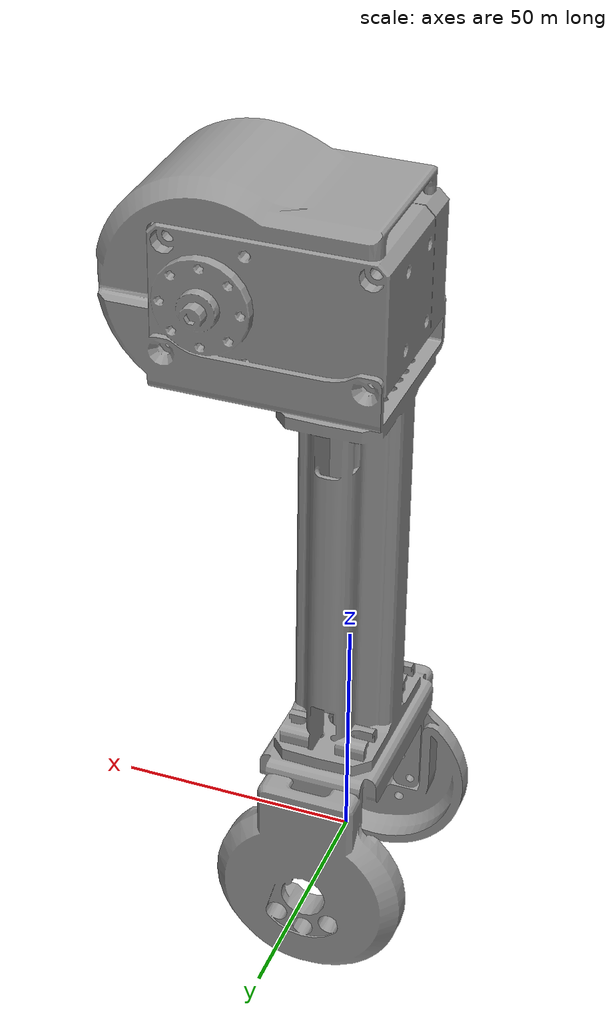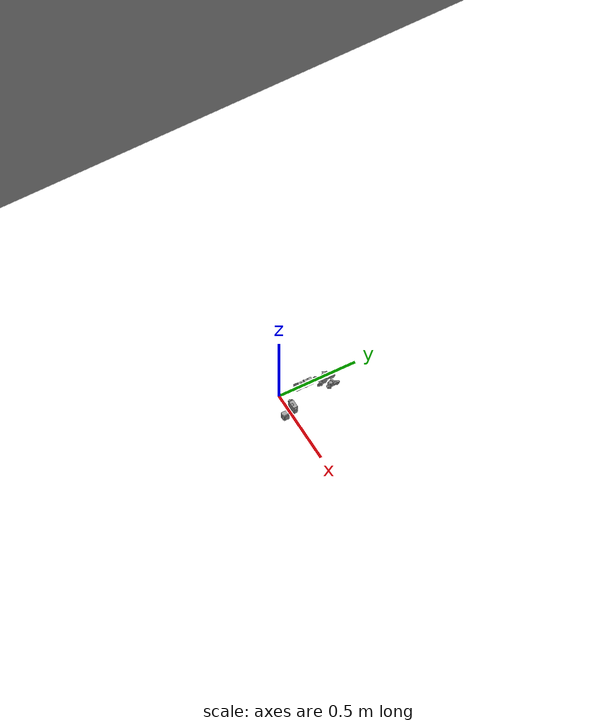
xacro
<?xml version="1.0"?>
<!-- Open_Manipulator Chain -->
<robot name="open_manipulator" xmlns:xacro="http://ros.org/wiki/xacro">

  <!-- Import all Gazebo-customization elements, including Gazebo colors -->
  <xacro:include filename="$(find open_manipulator_description)/urdf/open_manipulator.gazebo.xacro" />
  <!-- Import Rviz colors -->
  <xacro:include filename="$(find open_manipulator_description)/urdf/materials.xacro" />

  <!-- World -->
  <link name="world">
  </link>

  <!-- World fixed joint-->
  <joint name="world_fixed" type="fixed">
    <origin xyz="0.14515 0.005388 0.005" rpy="1.5708 0 0"/>
    <parent link="world"/>
    <child link="link1"/>
  </joint>

  <!-- Link 1 -->
  <link name="link1">
    <visual>
      <origin xyz="0 0 0" rpy="0 0 0"/>
      <geometry>
        <mesh filename="package://open_manipulator_description/meshes/chain_link1.stl" scale="1 1 1"/>
      </geometry>
      <material name="grey"/>
    </visual>

    <collision>
      <origin xyz="0 0 0" rpy="0 0 0"/>
      <geometry>
        <mesh filename="package://open_manipulator_description/meshes/chain_link1.stl" scale="1 1 1"/>
      </geometry>
    </collision>

    <inertial>
      <origin xyz="0 0 0" />
      <mass value="0.082" />
      <inertia ixx="0.1" ixy="0.0" ixz="0.0"
               iyy="0.1" iyz="0.0"
               izz="0.1" />
    </inertial>

  </link>

  <!-- Joint 1 -->
  <joint name="joint1" type="revolute">
    <parent link="link1"/>
    <child link="link2"/>
    <origin xyz="0.01045 0.041 0.0" rpy="1.5708 0.0 1.5708"/>
    <axis xyz="1 0 0"/>
    <limit velocity="6.5" effort="341" lower="${-pi*0.9}" upper="${pi*0.9}" />-
  </joint>

  <!-- Transmission 1 -->
  <transmission name="tran1">
    <type>transmission_interface/SimpleTransmission</type>
    <joint name="joint1">
      <hardwareInterface>hardware_interface/EffortJointInterface</hardwareInterface>
    </joint>
    <actuator name="motor1">
      <hardwareInterface>hardware_interface/EffortJointInterface</hardwareInterface>
      <mechanicalReduction>1</mechanicalReduction>
    </actuator>
  </transmission>

  <!--  Link 2 -->
  <link name="link2">
    <visual>
      <origin xyz="0 0 0" rpy="0 0 0"/>
      <geometry>
        <mesh filename="package://open_manipulator_description/meshes/chain_link2.stl" scale="1 1 1"/>
      </geometry>
      <material name="grey"/>
    </visual>

    <collision>
      <origin xyz="0 0 0" rpy="0 0 0"/>
      <geometry>
        <mesh filename="package://open_manipulator_description/meshes/chain_link2.stl" scale="1 1 1"/>
      </geometry>
    </collision>

    <inertial>
      <origin xyz="0 0 0" />
      <mass value="0.098" />
      <inertia ixx="0.1" ixy="0.0" ixz="0.0"
               iyy="0.1" iyz="0.0"
               izz="0.1" />
    </inertial>

  </link>

  <!--  Joint 2 -->
  <joint name="joint2" type="revolute">
    <parent link="link2"/>
    <child link="link3"/>
    <origin xyz="0.0436 0 0" rpy="0.018397 -1.5708 3.14"/>
    <axis xyz="-1 0 0"/>
    <limit velocity="6.5" effort="524" lower="${-pi*0.5}" upper="${pi*0.5}" />
  </joint>

  <!-- Transmission 2 -->
  <transmission name="tran2">
    <type>transmission_interface/SimpleTransmission</type>
    <joint name="joint2">
      <hardwareInterface>hardware_interface/EffortJointInterface</hardwareInterface>
    </joint>
    <actuator name="motor2">
      <hardwareInterface>hardware_interface/EffortJointInterface</hardwareInterface>
      <mechanicalReduction>1</mechanicalReduction>
    </actuator>
  </transmission>

  <!--  Link 3 -->
  <link name="link3">
    <visual>
      <origin xyz="0 0 0" rpy="0 0 0"/>
      <geometry>
        <mesh filename="package://open_manipulator_description/meshes/chain_link3.stl" scale="1 1 1"/>
      </geometry>
      <material name="grey"/>
    </visual>

    <collision>
      <origin xyz="0 0 0" rpy="0 0 0"/>
      <geometry>
        <mesh filename="package://open_manipulator_description/meshes/chain_link3.stl" scale="1 1 1"/>
      </geometry>
    </collision>

    <inertial>
      <origin xyz="0 0 0" />
      <mass value="0.136" />
      <inertia ixx="0.1" ixy="0.0" ixz="0.0"
               iyy="0.1" iyz="0.0"
               izz="0.1" />
    </inertial>

  </link>

  <!--  Joint 3 -->
  <joint name="joint3" type="revolute">
    <parent link="link3"/>
    <child link="link4"/>
    <origin xyz="0 0.0205 0.1575" rpy="0 0 0"/>
    <axis xyz="-1 0 0"/>
    <limit velocity="6.5" effort="243" lower="${-pi*0.3}" upper="${pi*0.44}" />
  </joint>

  <!-- Transmission 3 -->
  <transmission name="tran3">
    <type>transmission_interface/SimpleTransmission</type>
    <joint name="joint3">
      <hardwareInterface>hardware_interface/EffortJointInterface</hardwareInterface>
    </joint>
    <actuator name="motor3">
      <hardwareInterface>hardware_interface/EffortJointInterface</hardwareInterface>
      <mechanicalReduction>1</mechanicalReduction>
    </actuator>
  </transmission>

  <!--  Link 4 -->
  <link name="link4">
    <visual>
      <origin xyz="0 0 0" rpy="0 0 0"/>
      <geometry>
        <mesh filename="package://open_manipulator_description/meshes/chain_link4.stl" scale="1 1 1"/>
      </geometry>
      <material name="grey"/>
    </visual>

    <collision>
      <origin xyz="0 0 0" rpy="0 0 0"/>
      <geometry>
        <mesh filename="package://open_manipulator_description/meshes/chain_link4.stl" scale="1 1 1"/>
      </geometry>
    </collision>

    <inertial>
      <origin xyz="0 0 0" />
      <mass value="0.131" />
      <inertia ixx="0.1" ixy="0.0" ixz="0.0"
               iyy="0.1" iyz="0.0"
               izz="0.1" />
    </inertial>

  </link>

  <!--  Joint 4 -->
  <joint name="joint4" type="revolute">
    <parent link="link4"/>
    <child link="link5"/>
    <origin xyz="0 0.136 -0.02345" rpy="-2.618 0 -3.1416"/>
    <axis xyz="1 0 0"/>
    <limit velocity="6.5" effort="243" lower="${-pi*0.4}" upper="${pi*0.5}"  />
  </joint>

  <!-- Transmission 4 -->
  <transmission name="tran4">
    <type>transmission_interface/SimpleTransmission</type>
    <joint name="joint4">
      <hardwareInterface>hardware_interface/EffortJointInterface</hardwareInterface>
    </joint>
    <actuator name="motor4">
      <hardwareInterface>hardware_interface/EffortJointInterface</hardwareInterface>
      <mechanicalReduction>1</mechanicalReduction>
    </actuator>
  </transmission>

  <!--  Link 5 -->
  <link name="link5">
    <visual>
      <origin xyz="0 0 0" rpy="0 0 0"/>
      <geometry>
        <mesh filename="package://open_manipulator_description/meshes/chain_link5.stl" scale="1 1 1"/>
      </geometry>
      <material name="grey"/>
    </visual>

    <collision>
      <origin xyz="0 0 0" rpy="0 0 0"/>
      <geometry>
        <mesh filename="package://open_manipulator_description/meshes/chain_link5.stl" scale="1 1 1"/>
      </geometry>
    </collision>

    <inertial>
      <origin xyz="0 0 0" />
      <mass value="0.141" />
      <inertia ixx="0.1" ixy="0.0" ixz="0.0"
               iyy="0.1" iyz="0.0"
               izz="0.1" />
    </inertial>

  </link>

  <!--  Grip link -->
  <link name="grip_link">
    <visual>
      <origin xyz="0.028 0.0246 0" rpy="0 0 0"/>
      <geometry>
        <mesh filename="package://open_manipulator_description/meshes/chain_link_grip_l.stl" scale="0.001 0.001 0.001"/>
      </geometry>
      <material name="grey"/>
    </visual>

    <collision>
      <origin xyz="0.028 0.0246 0" rpy="0 0 0"/>
      <geometry>
        <mesh filename="package://open_manipulator_description/meshes/chain_link_grip_l.stl" scale="0.001 0.001 0.001"/>
      </geometry>
    </collision>

    <inertial>
      <origin xyz="0 0 0" />
      <mass value="0.017" />
      <inertia ixx="0.1" ixy="0.0" ixz="0.0"
               iyy="0.1" iyz="0.0"
               izz="0.1" />
    </inertial>

  </link>

  <!--  Grip joint -->
  <joint name="grip_joint" type="prismatic">
    <parent link="link5"/>
    <child link="grip_link"/>
    <origin xyz="0.00 0.06 0.0" rpy="0 0 1.5708"/>
    <axis xyz="0 -1 0"/>
    <limit velocity="3.5" effort="100" lower="-0.015" upper="0.0105" />
  </joint>

  <!-- Transmission 5 -->
  <transmission name="tran5">
    <type>transmission_interface/SimpleTransmission</type>
    <joint name="grip_joint">
      <hardwareInterface>hardware_interface/EffortJointInterface</hardwareInterface>
    </joint>
    <actuator name="motor7">
      <hardwareInterface>hardware_interface/EffortJointInterface</hardwareInterface>
      <mechanicalReduction>1</mechanicalReduction>
    </actuator>
  </transmission>

  <!--  Grip link sub -->
  <link name="grip_link_sub">
    <visual>
      <origin xyz="0.028 -0.0246 0" rpy="0 0 0"/>
      <geometry>
        <mesh filename="package://open_manipulator_description/meshes/chain_link_grip_r.stl" scale="0.001 0.001 0.001"/>
      </geometry>
      <material name="grey"/>
    </visual>

    <collision>
      <origin xyz="0.028 -0.0246 0" rpy="0 0 0"/>
      <geometry>
        <mesh filename="package://open_manipulator_description/meshes/chain_link_grip_r.stl" scale="0.001 0.001 0.001"/>
      </geometry>
    </collision>

    <inertial>
      <origin xyz="0 0 0" />
      <mass value="0.017" />
      <inertia ixx="0.1" ixy="0.0" ixz="0.0"
               iyy="0.1" iyz="0.0"
               izz="0.1" />
    </inertial>

  </link>

  <!--  Grip joint sub -->
  <joint name="grip_joint_sub" type="prismatic">
    <parent link="link5"/>
    <child link="grip_link_sub"/>
    <origin xyz="0.00 0.06 0" rpy="0 0 1.5708"/>
    <axis xyz="0 1 0"/>
    <limit velocity="3.5" effort="100" lower="-0.015" upper="0.0105" />
  </joint>

  <!-- Transmission 6 -->
  <transmission name="tran6">
    <type>transmission_interface/SimpleTransmission</type>
    <joint name="grip_joint_sub">
      <hardwareInterface>hardware_interface/EffortJointInterface</hardwareInterface>
    </joint>
    <actuator name="motor8">
      <hardwareInterface>hardware_interface/EffortJointInterface</hardwareInterface>
      <mechanicalReduction>1</mechanicalReduction>
    </actuator>
  </transmission>

</robot>
